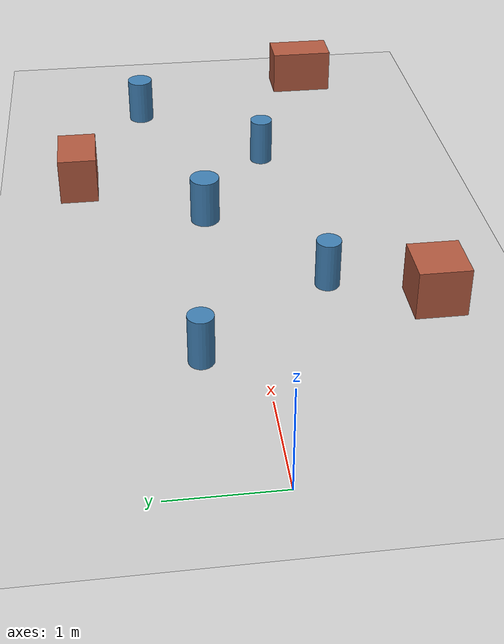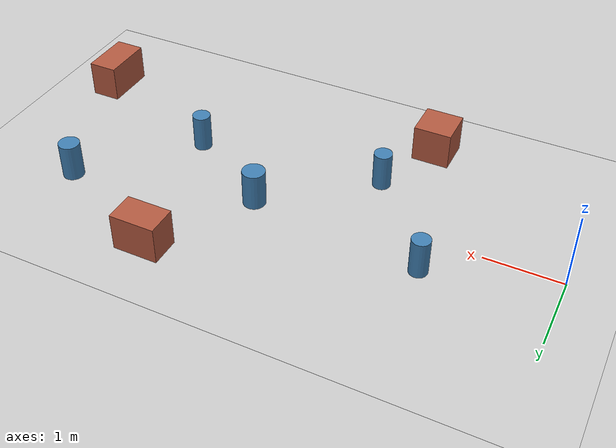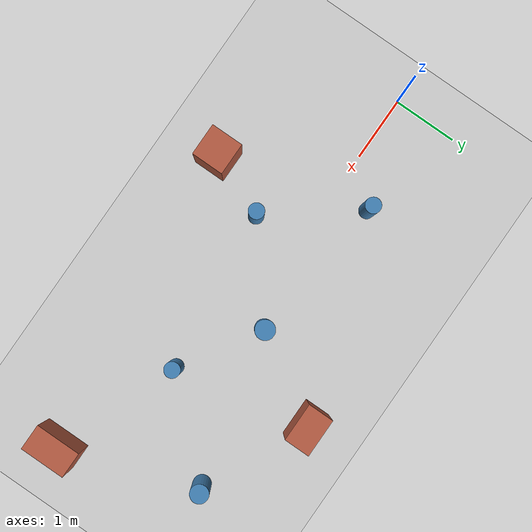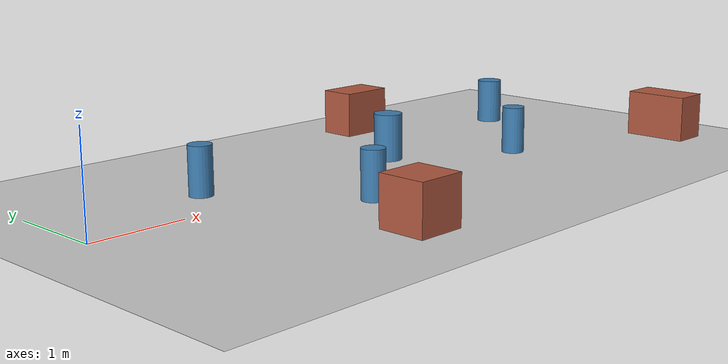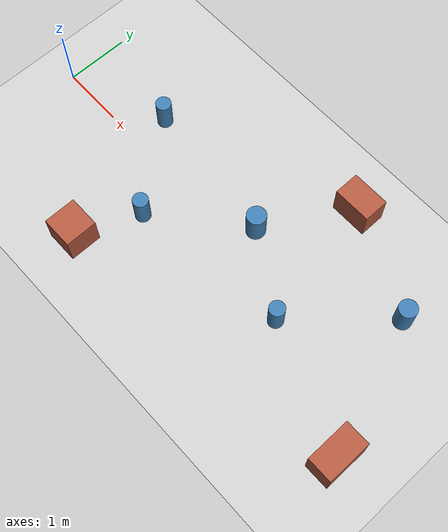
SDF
<?xml version="1.0"?>
<sdf version="1.9">
  <world name="clutter">
    <physics name="1ms" type="ignored">
      <max_step_size>0.002</max_step_size>
      <real_time_factor>1.0</real_time_factor>
    </physics>
    <plugin filename="gz-sim-physics-system" name="gz::sim::systems::Physics"/>
    <plugin filename="gz-sim-user-commands-system" name="gz::sim::systems::UserCommands"/>
    <plugin filename="gz-sim-scene-broadcaster-system" name="gz::sim::systems::SceneBroadcaster"/>
    <plugin filename="gz-sim-sensors-system" name="gz::sim::systems::Sensors">
      <render_engine>ogre2</render_engine>
    </plugin>
    <plugin filename="gz-sim-imu-system" name="gz::sim::systems::Imu"/>
    <gravity>0 0 -9.8</gravity>
    <light type="directional" name="sun">
      <cast_shadows>false</cast_shadows>
      <pose>0 0 10 0 0 0</pose>
      <diffuse>0.9 0.9 0.9 1</diffuse><specular>0.2 0.2 0.2 1</specular>
      <direction>-0.3 0.2 -0.9</direction>
    </light>
    <model name="ground_plane">
      <static>true</static>
      <link name="link">
        <collision name="collision">
          <geometry><plane><normal>0 0 1</normal><size>60 60</size></plane></geometry>
          <surface><friction><ode><mu>1.0</mu><mu2>1.0</mu2></ode></friction></surface>
        </collision>
        <visual name="visual">
          <geometry><plane><normal>0 0 1</normal><size>60 60</size></plane></geometry>
          <material><ambient>0.8 0.8 0.8 1</ambient><diffuse>0.8 0.8 0.8 1</diffuse></material>
        </visual>
      </link>
    </model>
    <model name="c1">
      <static>true</static><pose>1.6 0.55 0.25 0 0 0</pose>
      <link name="link">
        <collision name="collision"><geometry><cylinder><radius>0.12</radius><length>0.5</length></cylinder></geometry></collision>
        <visual name="visual"><geometry><cylinder><radius>0.12</radius><length>0.5</length></cylinder></geometry>
          <material><ambient>0.2 0.4 0.6 1</ambient><diffuse>0.25 0.5 0.7 1</diffuse></material></visual>
      </link>
    </model>
    <model name="c2">
      <static>true</static><pose>2.6 -0.75 0.25 0 0 0</pose>
      <link name="link">
        <collision name="collision"><geometry><cylinder><radius>0.12</radius><length>0.5</length></cylinder></geometry></collision>
        <visual name="visual"><geometry><cylinder><radius>0.12</radius><length>0.5</length></cylinder></geometry>
          <material><ambient>0.2 0.4 0.6 1</ambient><diffuse>0.25 0.5 0.7 1</diffuse></material></visual>
      </link>
    </model>
    <model name="c3">
      <static>true</static><pose>3.9 0.30 0.25 0 0 0</pose>
      <link name="link">
        <collision name="collision"><geometry><cylinder><radius>0.15</radius><length>0.5</length></cylinder></geometry></collision>
        <visual name="visual"><geometry><cylinder><radius>0.15</radius><length>0.5</length></cylinder></geometry>
          <material><ambient>0.2 0.4 0.6 1</ambient><diffuse>0.25 0.5 0.7 1</diffuse></material></visual>
      </link>
    </model>
    <model name="c4">
      <static>true</static><pose>5.1 -0.45 0.25 0 0 0</pose>
      <link name="link">
        <collision name="collision"><geometry><cylinder><radius>0.12</radius><length>0.5</length></cylinder></geometry></collision>
        <visual name="visual"><geometry><cylinder><radius>0.12</radius><length>0.5</length></cylinder></geometry>
          <material><ambient>0.2 0.4 0.6 1</ambient><diffuse>0.25 0.5 0.7 1</diffuse></material></visual>
      </link>
    </model>
    <model name="c5">
      <static>true</static><pose>6.3 0.85 0.25 0 0 0</pose>
      <link name="link">
        <collision name="collision"><geometry><cylinder><radius>0.14</radius><length>0.5</length></cylinder></geometry></collision>
        <visual name="visual"><geometry><cylinder><radius>0.14</radius><length>0.5</length></cylinder></geometry>
          <material><ambient>0.2 0.4 0.6 1</ambient><diffuse>0.25 0.5 0.7 1</diffuse></material></visual>
      </link>
    </model>
    <model name="b1">
      <static>true</static><pose>2.2 -1.7 0.25 0 0 0</pose>
      <link name="link">
        <collision name="collision"><geometry><box><size>0.5 0.5 0.5</size></box></geometry></collision>
        <visual name="visual"><geometry><box><size>0.5 0.5 0.5</size></box></geometry>
          <material><ambient>0.6 0.3 0.2 1</ambient><diffuse>0.7 0.35 0.25 1</diffuse></material></visual>
      </link>
    </model>
    <model name="b2">
      <static>true</static><pose>4.7 1.6 0.25 0 0 0</pose>
      <link name="link">
        <collision name="collision"><geometry><box><size>0.6 0.4 0.5</size></box></geometry></collision>
        <visual name="visual"><geometry><box><size>0.6 0.4 0.5</size></box></geometry>
          <material><ambient>0.6 0.3 0.2 1</ambient><diffuse>0.7 0.35 0.25 1</diffuse></material></visual>
      </link>
    </model>
    <model name="b3">
      <static>true</static><pose>7.0 -1.2 0.25 0 0 0</pose>
      <link name="link">
        <collision name="collision"><geometry><box><size>0.4 0.7 0.5</size></box></geometry></collision>
        <visual name="visual"><geometry><box><size>0.4 0.7 0.5</size></box></geometry>
          <material><ambient>0.6 0.3 0.2 1</ambient><diffuse>0.7 0.35 0.25 1</diffuse></material></visual>
      </link>
    </model>
  </world>
</sdf>
